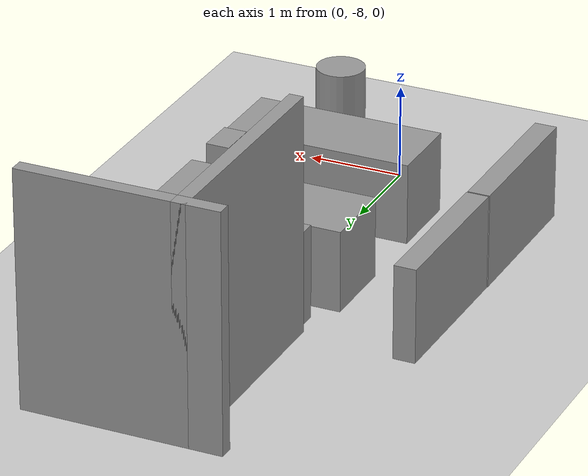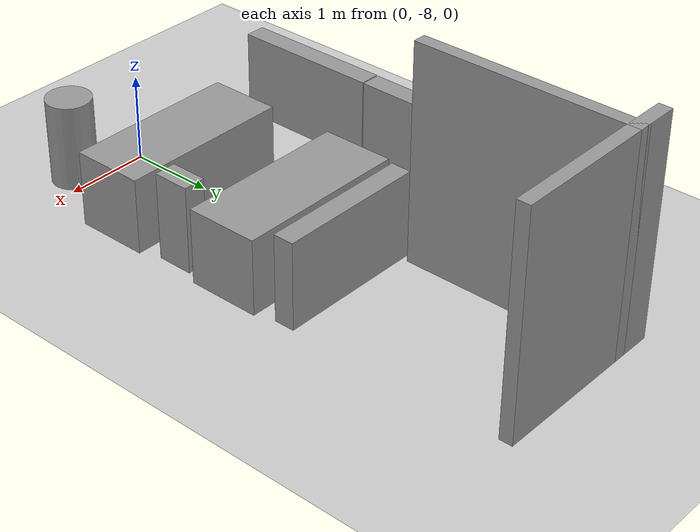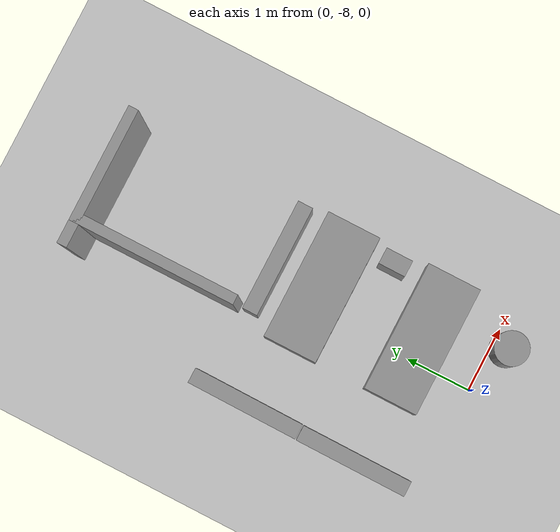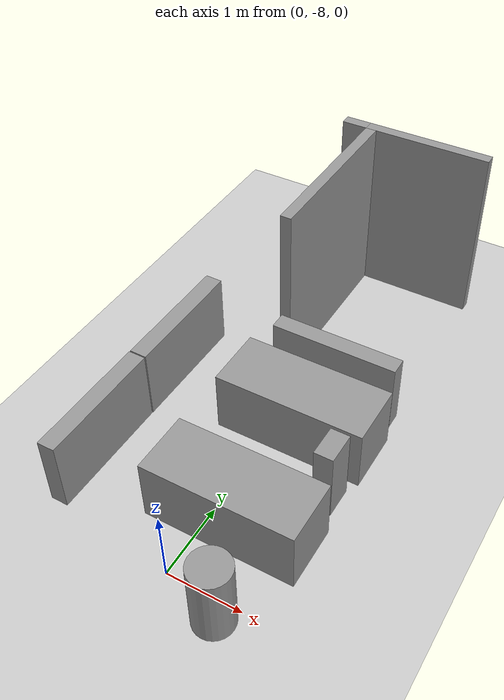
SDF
<sdf version="1.6">
 <world name="default">
  <model name="ground_plane">
   <static>1</static>
   <link name="link">
    <collision name="collision">
     <geometry><plane><normal>0 0 1</normal><size>100 100</size></plane></geometry>
     <surface><friction><ode><mu>100</mu><mu2>50</mu2></ode></friction></surface>
    </collision>
    <visual name="visual">
     <cast_shadows>0</cast_shadows>
     <geometry><plane><normal>0 0 1</normal><size>100 100</size></plane></geometry>
     <material>
      <script><uri>file://media/materials/scripts/gazebo.material</uri><name>Gazebo/Grey</name></script>
     </material>
    </visual>
   </link>
  </model>
  <model name="cma_parede_t">
   <pose>0.159955 -3.24016 0 0 -0 0</pose>
   <link name="Wall_15">
    <collision name="Wall_15_Collision">
     <geometry><box><size>2.5 0.15 2.5</size></box></geometry>
     <pose>0 0 1.25 0 -0 0</pose>
    </collision>
    <visual name="Wall_15_Visual">
     <pose>0 0 1.25 0 -0 0</pose>
     <geometry><box><size>2.5 0.15 2.5</size></box></geometry>
     <material>
      <script><uri>file://media/materials/scripts/gazebo.material</uri><name>Gazebo/Grey</name></script>
      <ambient>1 1 1 1</ambient>
     </material>
    </visual>
    <pose>-0.625 0 0 0 -0 1.5708</pose>
   </link>
   <link name="Wall_16">
    <collision name="Wall_16_Collision">
     <geometry><box><size>0.5 0.15 2.5</size></box></geometry>
     <pose>0 0 1.25 0 -0 0</pose>
    </collision>
    <visual name="Wall_16_Visual">
     <pose>0 0 1.25 0 -0 0</pose>
     <geometry><box><size>0.5 0.15 2.5</size></box></geometry>
     <material>
      <script><uri>file://media/materials/scripts/gazebo.material</uri><name>Gazebo/Grey</name></script>
      <ambient>1 1 1 1</ambient>
     </material>
    </visual>
    <pose>-0.8 1.175 0 0 -0 3.14159</pose>
   </link>
   <link name="Wall_18">
    <collision name="Wall_18_Collision">
     <geometry><box><size>1.75 0.15 2.5</size></box></geometry>
     <pose>0 0 1.25 0 -0 0</pose>
    </collision>
    <visual name="Wall_18_Visual">
     <pose>0 0 1.25 0 -0 0</pose>
     <geometry><box><size>1.75 0.15 2.5</size></box></geometry>
     <material>
      <script><uri>file://media/materials/scripts/gazebo.material</uri><name>Gazebo/Grey</name></script>
      <ambient>1 1 1 1</ambient>
     </material>
    </visual>
    <pose>0.175 1.175 0 0 -0 0</pose>
   </link>
   <static>1</static>
  </model>
  <model name="cma_cama_s">
   <link name="link_0">
    <pose>-0 2e-06 0 0 -0 0</pose>
    <inertial>
     <mass>1.44546</mass>
     <inertia>
      <ixx>0.173816</ixx>
      <ixy>0</ixy>
      <ixz>0</ixz>
      <iyy>0.575223</iyy>
      <iyz>0</iyz>
      <izz>0.56746</izz>
     </inertia>
    </inertial>
    <visual name="visual">
     <geometry><box><size>2.0054 0.830227 0.868163</size></box></geometry>
     <material>
      <lighting>1</lighting>
      <script><uri>file://media/materials/scripts/gazebo.material</uri><name>Gazebo/Grey</name></script>
      <ambient>0.3 0.3 0.3 1</ambient>
      <diffuse>0.7 0.7 0.7 1</diffuse>
      <specular>0.01 0.01 0.01 1</specular>
      <emissive>0 0 0 1</emissive>
     </material>
    </visual>
    <collision name="collision">
     <geometry><box><size>2.0054 0.830227 0.868163</size></box></geometry>
     <surface>
      <friction>
       <ode><mu>1</mu><mu2>1</mu2><fdir1>0 0 0</fdir1><slip1>0</slip1><slip2>0</slip2></ode>
       <torsional>
        <coefficient>1</coefficient>
        <patch_radius>0</patch_radius>
        <surface_radius>0</surface_radius>
        <use_patch_radius>1</use_patch_radius>
        <ode><slip>0</slip></ode>
       </torsional>
      </friction>
      <bounce><restitution_coefficient>0</restitution_coefficient><threshold>1e+06</threshold></bounce>
      <contact>
       <collide_without_contact>0</collide_without_contact>
       <collide_without_contact_bitmask>1</collide_without_contact_bitmask>
       <collide_bitmask>1</collide_bitmask>
       <ode>
        <soft_cfm>0</soft_cfm>
        <soft_erp>0.2</soft_erp>
        <kp>1e+13</kp>
        <kd>1</kd>
        <max_vel>0.01</max_vel>
        <min_depth>0</min_depth>
       </ode>
       <bullet>
        <split_impulse>1</split_impulse>
        <split_impulse_penetration_threshold>-0.01</split_impulse_penetration_threshold>
        <soft_cfm>0</soft_cfm>
        <soft_erp>0.2</soft_erp>
        <kp>1e+13</kp>
        <kd>1</kd>
       </bullet>
      </contact>
     </surface>
    </collision>
   </link>
   <static>0</static>
   <pose>0.313362 -5.42013 0.434078 -1e-06 4e-06 -1e-06</pose>
  </model>
  <model name="cma_cama_s_0">
   <link name="link_0">
    <pose>-0 2e-06 0 0 -0 0</pose>
    <inertial>
     <mass>1.44546</mass>
     <inertia>
      <ixx>0.173816</ixx>
      <ixy>0</ixy>
      <ixz>0</ixz>
      <iyy>0.575223</iyy>
      <iyz>0</iyz>
      <izz>0.56746</izz>
     </inertia>
    </inertial>
    <visual name="visual">
     <geometry><box><size>2.0054 0.830227 0.868163</size></box></geometry>
     <material>
      <lighting>1</lighting>
      <script><uri>file://media/materials/scripts/gazebo.material</uri><name>Gazebo/Grey</name></script>
      <ambient>0.3 0.3 0.3 1</ambient>
      <diffuse>0.7 0.7 0.7 1</diffuse>
      <specular>0.01 0.01 0.01 1</specular>
      <emissive>0 0 0 1</emissive>
     </material>
    </visual>
    <collision name="collision">
     <geometry><box><size>2.0054 0.830227 0.868163</size></box></geometry>
     <surface>
      <friction>
       <ode><mu>1</mu><mu2>1</mu2><fdir1>0 0 0</fdir1><slip1>0</slip1><slip2>0</slip2></ode>
       <torsional>
        <coefficient>1</coefficient>
        <patch_radius>0</patch_radius>
        <surface_radius>0</surface_radius>
        <use_patch_radius>1</use_patch_radius>
        <ode><slip>0</slip></ode>
       </torsional>
      </friction>
      <bounce><restitution_coefficient>0</restitution_coefficient><threshold>1e+06</threshold></bounce>
      <contact>
       <collide_without_contact>0</collide_without_contact>
       <collide_without_contact_bitmask>1</collide_without_contact_bitmask>
       <collide_bitmask>1</collide_bitmask>
       <ode>
        <soft_cfm>0</soft_cfm>
        <soft_erp>0.2</soft_erp>
        <kp>1e+13</kp>
        <kd>1</kd>
        <max_vel>0.01</max_vel>
        <min_depth>0</min_depth>
       </ode>
       <bullet>
        <split_impulse>1</split_impulse>
        <split_impulse_penetration_threshold>-0.01</split_impulse_penetration_threshold>
        <soft_cfm>0</soft_cfm>
        <soft_erp>0.2</soft_erp>
        <kp>1e+13</kp>
        <kd>1</kd>
       </bullet>
      </contact>
     </surface>
    </collision>
   </link>
   <static>0</static>
   <pose>0.313508 -7.03078 0.434078 1e-06 4e-06 -1e-06</pose>
  </model>
  <model name="cma_picador">
   <link name="link_2">
    <pose>-0.7258 -1.69104 0 0 -0 0</pose>
    <inertial>
     <mass>0.104732</mass>
     <inertia>
      <ixx>0.00927906</ixx>
      <ixy>0</ixy>
      <ixz>0</ixz>
      <iyy>0.010243</iyy>
      <iyz>0</iyz>
      <izz>0.00206672</izz>
     </inertia>
    </inertial>
    <visual name="visual">
     <geometry><box><size>0.416688 0.25134 1</size></box></geometry>
     <material>
      <lighting>1</lighting>
      <script><uri>file://media/materials/scripts/gazebo.material</uri><name>Gazebo/Grey</name></script>
      <ambient>0.3 0.3 0.3 1</ambient>
      <diffuse>0.7 0.7 0.7 1</diffuse>
      <specular>0.01 0.01 0.01 1</specular>
      <emissive>0 0 0 1</emissive>
     </material>
    </visual>
    <collision name="collision">
     <geometry><box><size>0.416688 0.25134 1</size></box></geometry>
     <surface>
      <friction>
       <ode><mu>1</mu><mu2>1</mu2><fdir1>0 0 0</fdir1><slip1>0</slip1><slip2>0</slip2></ode>
       <torsional>
        <coefficient>1</coefficient>
        <patch_radius>0</patch_radius>
        <surface_radius>0</surface_radius>
        <use_patch_radius>1</use_patch_radius>
        <ode><slip>0</slip></ode>
       </torsional>
      </friction>
      <bounce><restitution_coefficient>0</restitution_coefficient><threshold>1e+06</threshold></bounce>
      <contact>
       <collide_without_contact>0</collide_without_contact>
       <collide_without_contact_bitmask>1</collide_without_contact_bitmask>
       <collide_bitmask>1</collide_bitmask>
       <ode>
        <soft_cfm>0</soft_cfm>
        <soft_erp>0.2</soft_erp>
        <kp>1e+13</kp>
        <kd>1</kd>
        <max_vel>0.01</max_vel>
        <min_depth>0</min_depth>
       </ode>
       <bullet>
        <split_impulse>1</split_impulse>
        <split_impulse_penetration_threshold>-0.01</split_impulse_penetration_threshold>
        <soft_cfm>0</soft_cfm>
        <soft_erp>0.2</soft_erp>
        <kp>1e+13</kp>
        <kd>1</kd>
       </bullet>
      </contact>
     </surface>
    </collision>
   </link>
   <static>0</static>
   <pose>-0.58478 -5.45354 0.499996 -3e-06 -4e-06 1.5649</pose>
  </model>
  <model name="cma_armario_3">
   <link name="link_0">
    <pose>1.32157 0.885178 0.5 0 -0 0</pose>
    <inertial>
     <mass>0.402376</mass>
     <inertia>
      <ixx>0.0353686</ixx>
      <ixy>0</ixy>
      <ixz>0</ixz>
      <iyy>0.132616</iyy>
      <iyz>0</iyz>
      <izz>0.100922</izz>
     </inertia>
    </inertial>
    <visual name="visual">
     <geometry><box><size>1.71877 0.234069 1</size></box></geometry>
     <material>
      <lighting>1</lighting>
      <script><uri>file://media/materials/scripts/gazebo.material</uri><name>Gazebo/Grey</name></script>
      <ambient>0.3 0.3 0.3 1</ambient>
      <diffuse>0.7 0.7 0.7 1</diffuse>
      <specular>0.01 0.01 0.01 1</specular>
      <emissive>0 0 0 1</emissive>
     </material>
    </visual>
    <collision name="collision">
     <geometry><box><size>1.71877 0.234069 1</size></box></geometry>
     <surface>
      <friction>
       <ode><mu>1</mu><mu2>1</mu2><fdir1>0 0 0</fdir1><slip1>0</slip1><slip2>0</slip2></ode>
       <torsional>
        <coefficient>1</coefficient>
        <patch_radius>0</patch_radius>
        <surface_radius>0</surface_radius>
        <use_patch_radius>1</use_patch_radius>
        <ode><slip>0</slip></ode>
       </torsional>
      </friction>
      <bounce><restitution_coefficient>0</restitution_coefficient><threshold>1e+06</threshold></bounce>
      <contact>
       <collide_without_contact>0</collide_without_contact>
       <collide_without_contact_bitmask>1</collide_without_contact_bitmask>
       <collide_bitmask>1</collide_bitmask>
       <ode>
        <soft_cfm>0</soft_cfm>
        <soft_erp>0.2</soft_erp>
        <kp>1e+13</kp>
        <kd>1</kd>
        <max_vel>0.01</max_vel>
        <min_depth>0</min_depth>
       </ode>
       <bullet>
        <split_impulse>1</split_impulse>
        <split_impulse_penetration_threshold>-0.01</split_impulse_penetration_threshold>
        <soft_cfm>0</soft_cfm>
        <soft_erp>0.2</soft_erp>
        <kp>1e+13</kp>
        <kd>1</kd>
       </bullet>
      </contact>
     </surface>
    </collision>
   </link>
   <static>0</static>
   <pose>-0.941499 -5.55572 1e-06 -2e-06 -0 -0.002127</pose>
  </model>
  <model name="cma_armario_4">
   <link name="link_0">
    <pose>1.32157 0.885178 0.5 0 -0 0</pose>
    <inertial>
     <mass>0.402376</mass>
     <inertia>
      <ixx>0.0353686</ixx>
      <ixy>0</ixy>
      <ixz>0</ixz>
      <iyy>0.132616</iyy>
      <iyz>0</iyz>
      <izz>0.100922</izz>
     </inertia>
    </inertial>
    <visual name="visual">
     <geometry><box><size>1.71877 0.234069 1</size></box></geometry>
     <material>
      <lighting>1</lighting>
      <script><uri>file://media/materials/scripts/gazebo.material</uri><name>Gazebo/Grey</name></script>
      <ambient>0.3 0.3 0.3 1</ambient>
      <diffuse>0.7 0.7 0.7 1</diffuse>
      <specular>0.01 0.01 0.01 1</specular>
      <emissive>0 0 0 1</emissive>
     </material>
    </visual>
    <collision name="collision">
     <geometry><box><size>1.71877 0.234069 1</size></box></geometry>
     <surface>
      <friction>
       <ode><mu>1</mu><mu2>1</mu2><fdir1>0 0 0</fdir1><slip1>0</slip1><slip2>0</slip2></ode>
       <torsional>
        <coefficient>1</coefficient>
        <patch_radius>0</patch_radius>
        <surface_radius>0</surface_radius>
        <use_patch_radius>1</use_patch_radius>
        <ode><slip>0</slip></ode>
       </torsional>
      </friction>
      <bounce><restitution_coefficient>0</restitution_coefficient><threshold>1e+06</threshold></bounce>
      <contact>
       <collide_without_contact>0</collide_without_contact>
       <collide_without_contact_bitmask>1</collide_without_contact_bitmask>
       <collide_bitmask>1</collide_bitmask>
       <ode>
        <soft_cfm>0</soft_cfm>
        <soft_erp>0.2</soft_erp>
        <kp>1e+13</kp>
        <kd>1</kd>
        <max_vel>0.01</max_vel>
        <min_depth>0</min_depth>
       </ode>
       <bullet>
        <split_impulse>1</split_impulse>
        <split_impulse_penetration_threshold>-0.01</split_impulse_penetration_threshold>
        <soft_cfm>0</soft_cfm>
        <soft_erp>0.2</soft_erp>
        <kp>1e+13</kp>
        <kd>1</kd>
       </bullet>
      </contact>
     </surface>
    </collision>
   </link>
   <static>0</static>
   <pose>-0.78478 -6.54697 -2e-06 2e-06 -0 1.56234</pose>
  </model>
  <model name="cma_armario_5">
   <link name="link_0">
    <pose>1.32157 0.885178 0.5 0 -0 0</pose>
    <inertial>
     <mass>0.402376</mass>
     <inertia>
      <ixx>0.0353686</ixx>
      <ixy>0</ixy>
      <ixz>0</ixz>
      <iyy>0.132616</iyy>
      <iyz>0</iyz>
      <izz>0.100922</izz>
     </inertia>
    </inertial>
    <visual name="visual">
     <geometry><box><size>1.71877 0.234069 1</size></box></geometry>
     <material>
      <lighting>1</lighting>
      <script><uri>file://media/materials/scripts/gazebo.material</uri><name>Gazebo/Grey</name></script>
      <ambient>0.3 0.3 0.3 1</ambient>
      <diffuse>0.7 0.7 0.7 1</diffuse>
      <specular>0.01 0.01 0.01 1</specular>
      <emissive>0 0 0 1</emissive>
     </material>
    </visual>
    <collision name="collision">
     <geometry><box><size>1.71877 0.234069 1</size></box></geometry>
     <surface>
      <friction>
       <ode><mu>1</mu><mu2>1</mu2><fdir1>0 0 0</fdir1><slip1>0</slip1><slip2>0</slip2></ode>
       <torsional>
        <coefficient>1</coefficient>
        <patch_radius>0</patch_radius>
        <surface_radius>0</surface_radius>
        <use_patch_radius>1</use_patch_radius>
        <ode><slip>0</slip></ode>
       </torsional>
      </friction>
      <bounce><restitution_coefficient>0</restitution_coefficient><threshold>1e+06</threshold></bounce>
      <contact>
       <collide_without_contact>0</collide_without_contact>
       <collide_without_contact_bitmask>1</collide_without_contact_bitmask>
       <collide_bitmask>1</collide_bitmask>
       <ode>
        <soft_cfm>0</soft_cfm>
        <soft_erp>0.2</soft_erp>
        <kp>1e+13</kp>
        <kd>1</kd>
        <max_vel>0.01</max_vel>
        <min_depth>0</min_depth>
       </ode>
       <bullet>
        <split_impulse>1</split_impulse>
        <split_impulse_penetration_threshold>-0.01</split_impulse_penetration_threshold>
        <soft_cfm>0</soft_cfm>
        <soft_erp>0.2</soft_erp>
        <kp>1e+13</kp>
        <kd>1</kd>
       </bullet>
      </contact>
     </surface>
    </collision>
   </link>
   <static>0</static>
   <pose>-0.793303 -8.27814 -2e-06 2e-06 -0 1.56698</pose>
  </model>
  <model name="cma_cesto_0">
   <link name="link_1">
    <pose>-0.329659 -1.55494 0 0 -0 0</pose>
    <inertial>
     <mass>0.267897</mass>
     <inertia>
      <ixx>0.0268102</ixx>
      <ixy>0</ixy>
      <ixz>0</ixz>
      <iyy>0.0268102</iyy>
      <iyz>0</iyz>
      <izz>0.00897111</izz>
     </inertia>
    </inertial>
    <visual name="visual">
     <geometry><cylinder><radius>0.258792</radius><length>1</length></cylinder></geometry>
     <material>
      <lighting>1</lighting>
      <script><uri>file://media/materials/scripts/gazebo.material</uri><name>Gazebo/Grey</name></script>
      <ambient>0.3 0.3 0.3 1</ambient>
      <diffuse>0.7 0.7 0.7 1</diffuse>
      <specular>0.01 0.01 0.01 1</specular>
      <emissive>0 0 0 1</emissive>
     </material>
    </visual>
    <collision name="collision">
     <geometry><cylinder><radius>0.258792</radius><length>1</length></cylinder></geometry>
     <surface>
      <friction>
       <ode><mu>1</mu><mu2>1</mu2><fdir1>0 0 0</fdir1><slip1>0</slip1><slip2>0</slip2></ode>
       <torsional>
        <coefficient>1</coefficient>
        <patch_radius>0</patch_radius>
        <surface_radius>0</surface_radius>
        <use_patch_radius>1</use_patch_radius>
        <ode><slip>0</slip></ode>
       </torsional>
      </friction>
      <bounce><restitution_coefficient>0</restitution_coefficient><threshold>1e+06</threshold></bounce>
      <contact>
       <collide_without_contact>0</collide_without_contact>
       <collide_without_contact_bitmask>1</collide_without_contact_bitmask>
       <collide_bitmask>1</collide_bitmask>
       <ode>
        <soft_cfm>0</soft_cfm>
        <soft_erp>0.2</soft_erp>
        <kp>1e+13</kp>
        <kd>1</kd>
        <max_vel>0.01</max_vel>
        <min_depth>0</min_depth>
       </ode>
       <bullet>
        <split_impulse>1</split_impulse>
        <split_impulse_penetration_threshold>-0.01</split_impulse_penetration_threshold>
        <soft_cfm>0</soft_cfm>
        <soft_erp>0.2</soft_erp>
        <kp>1e+13</kp>
        <kd>1</kd>
       </bullet>
      </contact>
     </surface>
    </collision>
   </link>
   <static>0</static>
   <pose>1.10203 -6.65937 0.499991 0 -0 0</pose>
  </model>
 </world>
</sdf>
